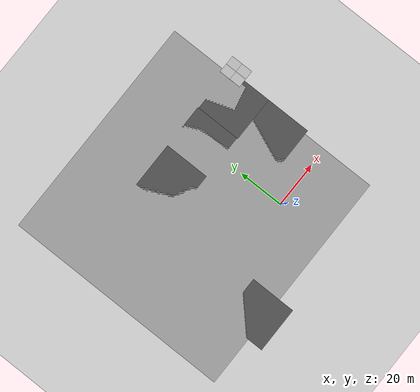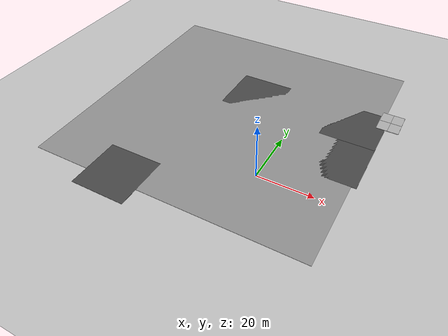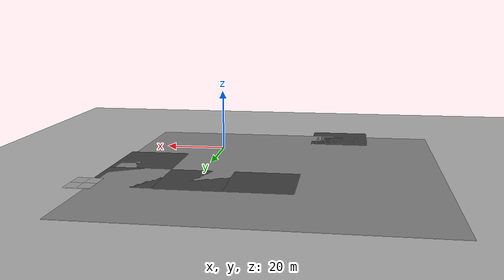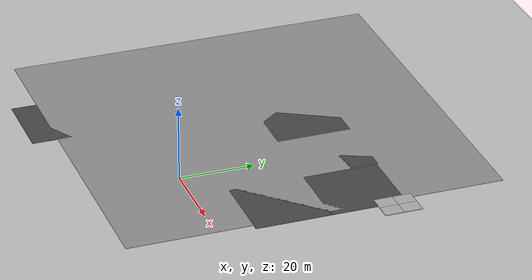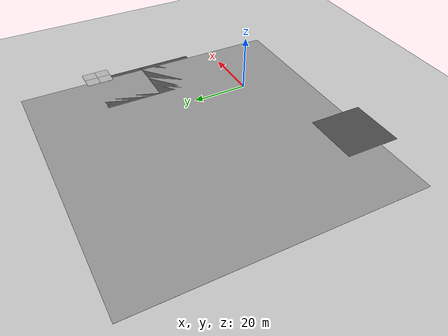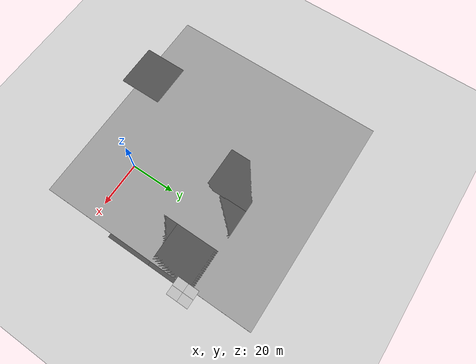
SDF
<sdf version="1.7">
 <world name="default">
  <model name="ground_plane">
   <static>1</static>
   <link name="link">
    <collision name="collision">
     <geometry><plane><normal>0 0 1</normal><size>100 100</size></plane></geometry>
     <surface><friction><ode><mu>100</mu><mu2>50</mu2></ode></friction></surface>
    </collision>
    <visual name="visual">
     <cast_shadows>0</cast_shadows>
     <geometry><plane><normal>0 0 1</normal><size>100 100</size></plane></geometry>
     <material>
      <script><uri>file://media/materials/scripts/gazebo.material</uri><name>Gazebo/Grey</name></script>
     </material>
    </visual>
   </link>
  </model>
  <model name="asphalt_plane">
   <static>1</static>
   <link name="link">
    <collision name="collision"><geometry><box><size>20 20 0.1</size></box></geometry></collision>
    <visual name="visual">
     <cast_shadows>0</cast_shadows>
     <geometry><box><size>20 20 0.1</size></box></geometry>
     <material>
      <script>
       <uri>model://asphalt_plane/materials/scripts</uri>
       <uri>model://asphalt_plane/materials/textures</uri>
       <name>vrc/asphalt</name>
      </script>
     </material>
    </visual>
   </link>
   <pose>-40.0367 -19.9871 0 0 -0 0</pose>
  </model>
  <model name="mud_box">
   <static>1</static>
   <link name="link">
    <collision name="collision"><geometry><box><size>8 10 0.2</size></box></geometry></collision>
    <visual name="visual_1">
     <pose>-2 2.5 0 0 -0 0</pose>
     <cast_shadows>0</cast_shadows>
     <geometry><box><size>4 5 0.2</size></box></geometry>
     <material>
      <script>
       <uri>model://mud_box/materials/scripts</uri>
       <uri>model://mud_box/materials/textures</uri>
       <name>vrc/mud</name>
      </script>
     </material>
    </visual>
    <visual name="visual_2">
     <pose>2 2.5 0 0 -0 0</pose>
     <cast_shadows>0</cast_shadows>
     <geometry><box><size>4 5 0.2</size></box></geometry>
     <material>
      <script>
       <uri>model://mud_box/materials/scripts</uri>
       <uri>model://mud_box/materials/textures</uri>
       <name>vrc/mud</name>
      </script>
     </material>
    </visual>
    <visual name="visual_3">
     <pose>2 -2.5 0 0 -0 0</pose>
     <cast_shadows>0</cast_shadows>
     <geometry><box><size>4 5 0.2</size></box></geometry>
     <material>
      <script>
       <uri>model://mud_box/materials/scripts</uri>
       <uri>model://mud_box/materials/textures</uri>
       <name>vrc/mud</name>
      </script>
     </material>
    </visual>
    <visual name="visual_4">
     <pose>-2 -2.5 0 0 -0 0</pose>
     <cast_shadows>0</cast_shadows>
     <geometry><box><size>4 5 0.2</size></box></geometry>
     <material>
      <script>
       <uri>model://mud_box/materials/scripts</uri>
       <uri>model://mud_box/materials/textures</uri>
       <name>vrc/mud</name>
      </script>
     </material>
    </visual>
   </link>
   <pose>30.76 47.1847 0 0 -0 0</pose>
  </model>
  <model name="asphalt_plane_5_clone_3">
   <static>1</static>
   <link name="link">
    <collision name="collision"><geometry><box><size>20 20 0.1</size></box></geometry></collision>
    <visual name="visual">
     <cast_shadows>0</cast_shadows>
     <geometry><box><size>20 20 0.1</size></box></geometry>
     <material>
      <script>
       <uri>model://asphalt_plane/materials/scripts</uri>
       <uri>model://asphalt_plane/materials/textures</uri>
       <name>vrc/asphalt</name>
      </script>
     </material>
    </visual>
   </link>
   <pose>19.9799 19.8087 0 0 -0 0</pose>
  </model>
  <model name="asphalt_plane_5_clone_4">
   <static>1</static>
   <link name="link">
    <collision name="collision"><geometry><box><size>20 20 0.1</size></box></geometry></collision>
    <visual name="visual">
     <cast_shadows>0</cast_shadows>
     <geometry><box><size>20 20 0.1</size></box></geometry>
     <material>
      <script>
       <uri>model://asphalt_plane/materials/scripts</uri>
       <uri>model://asphalt_plane/materials/textures</uri>
       <name>vrc/asphalt</name>
      </script>
     </material>
    </visual>
   </link>
   <pose>19.9768 39.7391 0 0 -0 0</pose>
  </model>
  <model name="asphalt_plane_5_clone_5">
   <static>1</static>
   <link name="link">
    <collision name="collision"><geometry><box><size>20 20 0.1</size></box></geometry></collision>
    <visual name="visual">
     <cast_shadows>0</cast_shadows>
     <geometry><box><size>20 20 0.1</size></box></geometry>
     <material>
      <script>
       <uri>model://asphalt_plane/materials/scripts</uri>
       <uri>model://asphalt_plane/materials/textures</uri>
       <name>vrc/asphalt</name>
      </script>
     </material>
    </visual>
   </link>
   <pose>0.037683 40.1425 0 0 -0 0</pose>
  </model>
  <model name="asphalt_plane_5_clone_6">
   <static>1</static>
   <link name="link">
    <collision name="collision"><geometry><box><size>20 20 0.1</size></box></geometry></collision>
    <visual name="visual">
     <cast_shadows>0</cast_shadows>
     <geometry><box><size>20 20 0.1</size></box></geometry>
     <material>
      <script>
       <uri>model://asphalt_plane/materials/scripts</uri>
       <uri>model://asphalt_plane/materials/textures</uri>
       <name>vrc/asphalt</name>
      </script>
     </material>
    </visual>
   </link>
   <pose>-19.6609 40.1028 0 0 -0 0</pose>
  </model>
  <model name="ground_plane_3">
   <static>1</static>
   <link name="link">
    <collision name="collision">
     <geometry><plane><normal>0 0 1</normal><size>100 100</size></plane></geometry>
     <surface><friction><ode><mu>100</mu><mu2>50</mu2></ode></friction></surface>
    </collision>
    <visual name="visual">
     <cast_shadows>0</cast_shadows>
     <geometry><plane><normal>0 0 1</normal><size>100 100</size></plane></geometry>
     <material>
      <script><uri>file://media/materials/scripts/gazebo.material</uri><name>Gazebo/Grey</name></script>
     </material>
    </visual>
   </link>
   <pose>-21.7066 26.7998 0 0 -0 0</pose>
  </model>
 </world>
</sdf>
